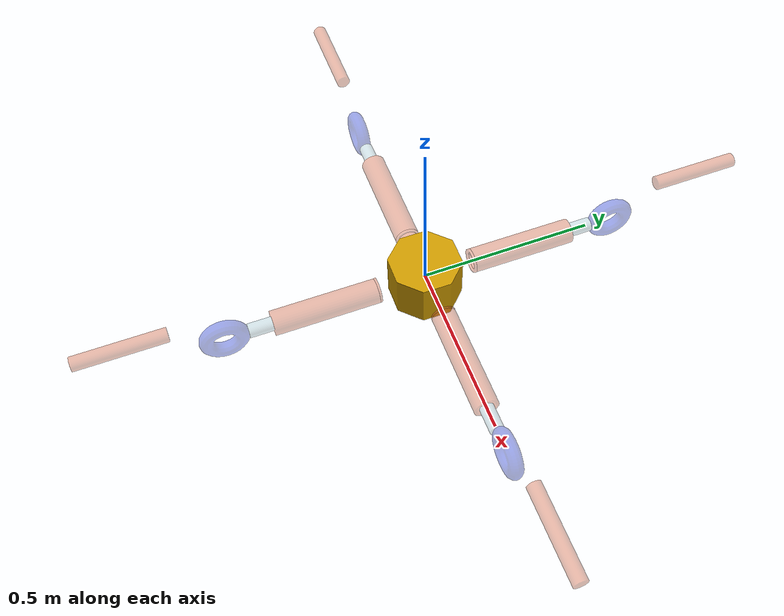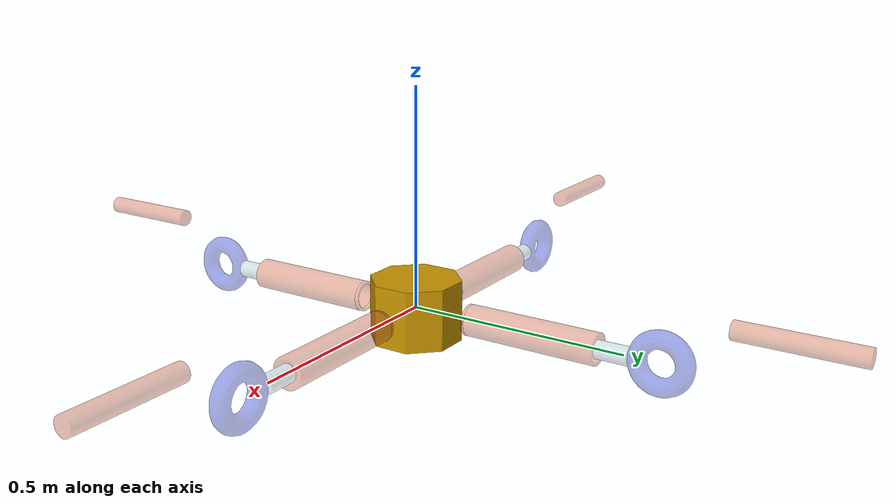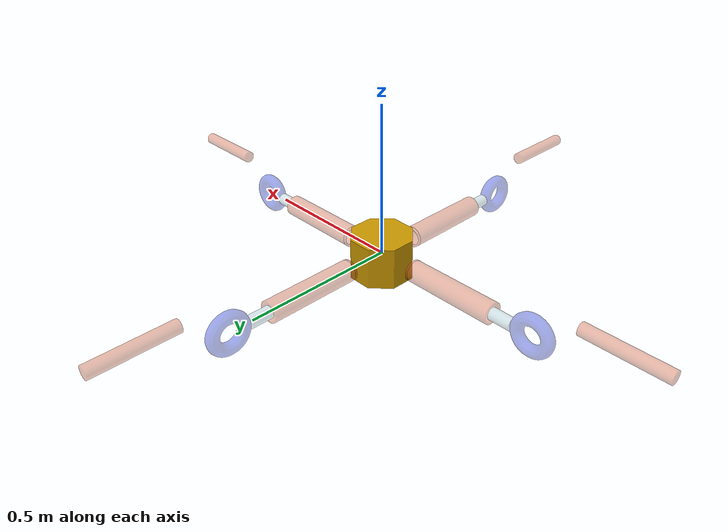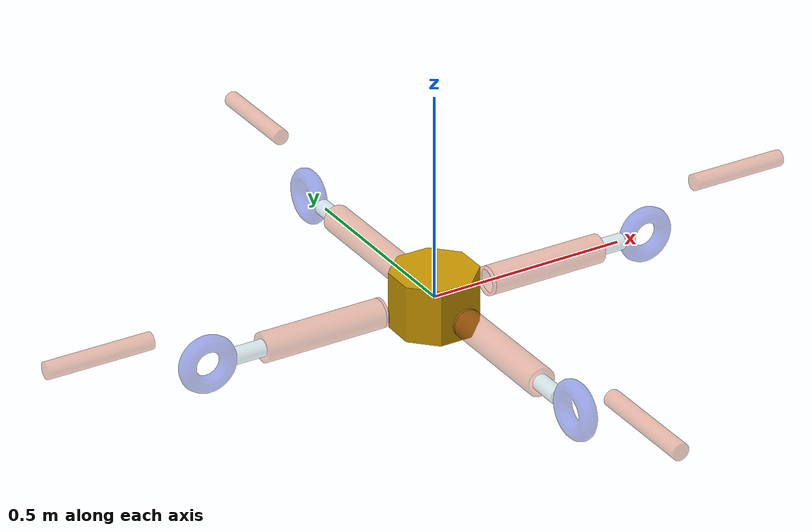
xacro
<?xml version="1.0" ?>
<robot name="starbot" xmlns:xacro="http://ros.org/wiki/xacro">

    <!--- new_gazebo_version should be false by default because pinocchio needs it!-->
    <xacro:arg name="robot_name" default="starbot"/>

    <xacro:include filename="$(find starbot_description)/gazebo/gazebo.urdf.xacro">
        <xacro:arg name="task_period" value="$(arg task_period)"/>
	<xacro:arg name="robot_name" value="$(arg robot_name)"/>
    </xacro:include>

    <xacro:include filename="$(find starbot_description)/urdfs/leg.xacro"/>

    <link name="base_link" />
    <joint name="floating_base" type="fixed">
        <origin rpy="0 0 0" xyz="0 0 0"/>
        <parent link="base_link"/>
        <child link="trunk"/>
    </joint>

    <link name="trunk">
        <inertial>
        <origin xyz="0 0 0" rpy="0 0 0"/>
        <mass value="10.0"/>
        <inertia ixx="0.1956" ixy="0" ixz="0" iyy="0.1956" iyz="0" izz="0.2579"/>
      </inertial>
      <visual>
        <origin xyz="0 0 0" rpy="0 0 0"/>
        <geometry>
           <mesh filename="package://starbot_description/meshes/stl/octagon.stl" scale = "0.7 0.7 0.7"/>
        </geometry>
        <material name="yellow">
        	<color rgba="0.8 0.6 0.0 1.0"/>
        </material>
      </visual>
      <collision>
            <origin xyz="0 0 0" rpy="0 0 0" />
            <geometry>
                <mesh filename="package://starbot_description/meshes/stl/octagon.stl" scale = "0.7 0.7 0.7" />
            </geometry>
        </collision>

    </link>

    <!-- if we imagine to place a line between the two positive direction of axis x and y -->

    <!-- LEFT FRONT LEG = leg align with axis y -->
     <xacro:leg
    	name="lf"
    	parent="trunk"
    	is_front="true"
    	is_right="false"
    	robot_name="$(arg robot_name)">
    </xacro:leg>

    <!-- RIGHT FRONT LEG = leg align with axis x -->
    <xacro:leg
    	name="rf"
    	parent="trunk"
    	is_front="true"
    	is_right="true"
    	robot_name="$(arg robot_name)">
    </xacro:leg>

    <!-- LEFT HIND LEG = leg align with axis neg x -->
     <xacro:leg
    	name="lh"
    	parent="trunk"
    	is_front="false"
    	is_right="false"
    	robot_name="$(arg robot_name)">
    </xacro:leg>

    <!-- RIGHT HIND LEG = leg align with axis neg y -->
    <xacro:leg
    	name="rh"
    	parent="trunk"
    	is_front="false"
    	is_right="true"
    	robot_name="$(arg robot_name)">
    </xacro:leg>

</robot>

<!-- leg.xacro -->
<robot xmlns:xacro="http://ros.org/wiki/xacro" name="solo">

    <!-- Things that are needed only for Gazebo (not the physical robot). These include sensor and controller plugin specifications -->
    <xacro:include filename="$(find starbot_description)/urdfs/leg.transmission.xacro"/>
    <xacro:include filename="$(find starbot_description)/urdfs/leg.gazebo.xacro"/>
    <xacro:include filename="$(find starbot_description)/urdfs/common.xacro"/>

    <!-- This macro has for purpose to define a leg -->
    <xacro:macro name="leg" params="name parent is_front is_right robot_name">

        <!-- Starbot 1.0 -->

        <!--BS_JOINT: Joint between the body and the shoulder -->
        <joint name="${name}_bs_joint" type="revolute">
            <parent link="${parent}"/>
            <child link="${name}_shoulder"/>

            <!-- limit and placement of the joint -->
            <xacro:if value="${is_front}">
                <xacro:unless value="${is_right}">
                    <!-- LF_SHOULDER_JOINT -->
                    <axis xyz="1 0 0"/>
                    <limit effort="${MAX_TORQUE}" lower="-${REV_LIMIT}" upper="${REV_LIMIT}" velocity="${VELOCITY}"/>
                    <origin xyz="0 ${SHOULDER_pos}  0" rpy="0 0 0" />
                </xacro:unless>
                <xacro:if value="${is_right}">
                    <!-- RF_SHOULDER_JOINT -->
                    <axis xyz="0 1 0"/>
                    <limit effort="${MAX_TORQUE}" lower="-${REV_LIMIT}" upper="${REV_LIMIT}" velocity="${VELOCITY}"/>
                    <origin xyz="${SHOULDER_pos} 0 0" rpy="0 0 0" />
                </xacro:if>
            </xacro:if>
            <xacro:unless value="${is_front}">
                <xacro:unless value="${is_right}">
                    <!-- LH_SHOULDER_JOINT -->
                    <axis xyz="0 -1 0"/>
                    <limit effort="${MAX_TORQUE}" lower="-${REV_LIMIT}" upper="${REV_LIMIT}" velocity="${VELOCITY}"/>
                    <origin xyz="-${SHOULDER_pos} 0 0" rpy="0 0 0" />
                </xacro:unless>
                <xacro:if value="${is_right}">
                    <!-- RH_UPPER_LEG_JOINT -->
                    <axis xyz="-1 0 0"/>
                    <limit effort="${MAX_TORQUE}" lower="-${REV_LIMIT}" upper="${REV_LIMIT}" velocity="${VELOCITY}"/>
                    <origin xyz="0 -${SHOULDER_pos} 0" rpy="0 0 0" />
                </xacro:if>
            </xacro:unless>

            <!-- pybullet simulation parameters -->
            <dynamics damping="0.0" friction="0.0"/>
        </joint>

        <!-- SHOULDER ASSEMBLY -->
        <link name="${name}_shoulder">
            <!-- create a dummy shoulder_assembly link to join the two joints -->
            <!--VISUAL-->
            <visual>
            <origin xyz="0 0 0" rpy="0 0 0" />
                <xacro:if value="${is_front}">
                    <xacro:unless value="${is_right}">
                        <!-- LF SHOULDER -->
                        <geometry>
                            <mesh filename="package://starbot_description/meshes/stl/shoulder_y.stl"/>
                        </geometry>
                    </xacro:unless>
                <xacro:if value="${is_right}">
                    <!-- RF SHOULDER-->
                    <geometry>
                        <mesh filename="package://starbot_description/meshes/stl/shoulder_x.stl"/>
                    </geometry>
                    </xacro:if>
                </xacro:if>
                <xacro:unless value="${is_front}">
                    <xacro:unless value="${is_right}">
                        <!-- LH SHOULDER -->
                        <geometry>
                            <mesh filename="package://starbot_description/meshes/stl/shoulder_nx.stl"/>
                        </geometry>
                    </xacro:unless>
                    <xacro:if value="${is_right}">
                        <!-- RH SHOULDER -->
                        <geometry>
                            <mesh filename="package://starbot_description/meshes/stl/shoulder_ny.stl"/>
                        </geometry>
                    </xacro:if>
                </xacro:unless>
                <material name="orange"/>
            </visual>

            <!--INERTIAL -->
            <inertial>
                <origin xyz="0 0 0" rpy="0 0 0" />
                <mass value="0.0001"/>
                <inertia ixx="0" ixy="0" ixz="0" iyy="0" iyz="0" izz="0"/>
            </inertial>
        </link>

        <!--UPPER LEG JOINT-->

        <joint name="${name}_upper_leg_joint" type="revolute">
            <parent link="${name}_shoulder"/>
            <child link="${name}_upperleg"/>

            <!-- joints rotates around the y-axis -->

            <!-- limit and placement of the joint -->
            <xacro:if value="${is_front}">
                <xacro:unless value="${is_right}">
                    <!-- LF_UPPER_LEG_JOINT -->
                    <axis xyz="0 0 1"/>
                    <limit effort="${MAX_TORQUE}" lower="-${REV_LIMIT}" upper="${REV_LIMIT}" velocity="${VELOCITY}"/>
                    <origin xyz="0 0 0" rpy="0 0 0" />
                </xacro:unless>
                <xacro:if value="${is_right}">
                    <!-- RF_UPPER_LEG_JOINT -->
                    <axis xyz="0 0 1"/>
                    <limit effort="${MAX_TORQUE}" lower="-${REV_LIMIT}" upper="${REV_LIMIT}" velocity="${VELOCITY}"/>
                    <origin xyz="0 0 0" rpy="0 0 0" />
                </xacro:if>
            </xacro:if>
            <xacro:unless value="${is_front}">
                <xacro:unless value="${is_right}">
                    <!-- LH_UPPER_LEG_JOINT -->
                    <axis xyz="0 0 1"/>
                    <limit effort="${MAX_TORQUE}" lower="-${REV_LIMIT}" upper="${REV_LIMIT}" velocity="${VELOCITY}"/>
                    <origin xyz="0 0 0" rpy="0 0 0" />
                </xacro:unless>
                <xacro:if value="${is_right}">
                    <!-- RH_UPPER_LEG_JOINT -->
                    <axis xyz="0 0 1"/>
                    <limit effort="${MAX_TORQUE}" lower="-${REV_LIMIT}" upper="${REV_LIMIT}" velocity="${VELOCITY}"/>
                    <origin xyz="0 0 0" rpy="0 0 0" />
                </xacro:if>
            </xacro:unless>

            <!-- pybullet simulation parameters -->
            <dynamics damping="0.0" friction="0.0"/>
        </joint>

        <!-- UPPER LEG ASSEMBLY -->
        <link name="${name}_upperleg">
            <!--VISUAL-->
            <visual>

                <xacro:if value="${is_front}">
                    <xacro:unless value="${is_right}">
			<!-- LF UPPER_LEG -->
			<origin xyz="0 ${UPPER_LEG_pos} 0" rpy="0 0 0" />
                        <geometry>
                            <mesh filename="package://starbot_description/meshes/stl/upper_leg_y.stl"/>
                        </geometry>
                    </xacro:unless>
                    <xacro:if value="${is_right}">
			<!-- RF UPPER_LEG-->
			<origin xyz="${UPPER_LEG_pos} 0 0" rpy="0 0 0" />
                        <geometry>
                            <mesh filename="package://starbot_description/meshes/stl/upper_leg_x.stl"/>
                        </geometry>
                        </xacro:if>
                </xacro:if>
                <xacro:unless value="${is_front}">
                    <xacro:unless value="${is_right}">
			<!-- LH UPPER_LEG -->
			<origin xyz="-${UPPER_LEG_pos} 0 0" rpy="0 0 0" />
                        <geometry>
                            <mesh filename="package://starbot_description/meshes/stl/upper_leg_nx.stl"/>
                        </geometry>
                    </xacro:unless>
                    <xacro:if value="${is_right}">
		        <!-- RH UPPER_LEG -->
		        <origin xyz="0 -${UPPER_LEG_pos} 0" rpy="0 0 0" />
                        <geometry>
                            <mesh filename="package://starbot_description/meshes/stl/upper_leg_ny.stl"/>
                        </geometry>
                    </xacro:if>
                </xacro:unless>
                <material name="orange"/>
            </visual>

            <!--COLLISION-->

            <!-- UPPER LEG LINK INERTIAL -->
            <xacro:if value="${is_front}">
                    <xacro:unless value="${is_right}">
                        <!-- LF UPPER_LEG -->
                        <inertial>
                    		<origin xyz="0 ${CM_XY_UPPER} ${CM_Z_UPPER}" rpy="0 0 1.57"/>
                    		<mass value="2.3"/>
                    		<inertia ixx="0.001878" ixy="0" ixz="0" iyy="0.0182" iyz="0" izz="0.0182"/>
                	</inertial>
                    </xacro:unless>
                    <xacro:if value="${is_right}">
                        <!-- RF UPPER_LEG -->
                        <inertial>
                    		<origin xyz="${CM_XY_UPPER} 0 ${CM_Z_UPPER}" rpy="0 0 0"/>
                    		<mass value="2.3"/>
                    		<inertia ixx="0.001878" ixy="0" ixz="0" iyy="0.0182" iyz="0" izz="0.0182"/>
                	</inertial>
                    </xacro:if>
                </xacro:if>
                <xacro:unless value="${is_front}">
                    <xacro:unless value="${is_right}">
                        <!-- LH UPPER_LEG -->
                        <inertial>
                    		<origin xyz="-${CM_XY_UPPER} 0 ${CM_Z_UPPER}" rpy="0 0 0"/>
                    		<mass value="2.3"/>
                    		<inertia ixx="0.001878" ixy="0" ixz="0" iyy="0.0182" iyz="0" izz="0.0182"/>
                	</inertial>
                    </xacro:unless>
                    <xacro:if value="${is_right}">
                        <!-- RH UPPER_LEG-->
                        <inertial>
                    		<origin xyz="0 -${CM_XY_UPPER} ${CM_Z_UPPER}" rpy="0 0 1.57"/>
                    		<mass value="2.3"/>
                    		<inertia ixx="0.001878" ixy="0" ixz="0" iyy="0.0182" iyz="0" izz="0.0182"/>
                	</inertial>
                    </xacro:if>
                </xacro:unless>

        </link>

        <!--LOWER LEG JOINT-->

        <joint name="${name}_lower_leg_joint" type="prismatic">
            <parent link="${name}_upperleg"/>
            <child link="${name}_lowerleg"/>

            <!-- limit and placement of the joint -->
            <xacro:if value="${is_front}">
                <xacro:unless value="${is_right}">
                    <!-- LF_LOWER_LEG_JOINT -->
                    <axis xyz="0 1 0"/>
                    <limit effort="${MAX_FORCE_LOWERLEG}" lower="${LOWER_LIMIT_PRI}" upper="${UPPER_LIMIT_PRI}" velocity="${VELOCITY}"/>
                    <origin xyz="0 ${LOWER_LEG_joint_pos} 0" rpy="0 0 0" />
                </xacro:unless>
                <xacro:if value="${is_right}">
                    <axis xyz="1 0 0"/>
                    <!-- RF_LOWER_LEG_JOINT -->
                    <limit effort="${MAX_FORCE_LOWERLEG}" lower="${LOWER_LIMIT_PRI}" upper="${UPPER_LIMIT_PRI}" velocity="${VELOCITY}"/>
                    <origin xyz="${LOWER_LEG_joint_pos} 0 0" rpy="0 0 0" />
                </xacro:if>
            </xacro:if>
            <xacro:unless value="${is_front}">
                <xacro:unless value="${is_right}">
                    <axis xyz="-1 0 0"/>
                    <!-- LH_LOWER_LEG_JOINT -->
                    <limit effort="${MAX_FORCE_LOWERLEG}" lower="${LOWER_LIMIT_PRI}" upper="${UPPER_LIMIT_PRI}" velocity="${VELOCITY}"/>
                    <origin xyz="-${LOWER_LEG_joint_pos} 0 0" rpy="0 0 0" />
                </xacro:unless>
                <xacro:if value="${is_right}">
                    <!-- RF_LOWER_LEG_JOINT -->
                    <axis xyz="0 -1 0"/>
                    <limit effort="${MAX_FORCE_LOWERLEG}" lower="${LOWER_LIMIT_PRI}" upper="${UPPER_LIMIT_PRI}" velocity="${VELOCITY}"/>
                    <origin xyz="0 -${LOWER_LEG_joint_pos} 0" rpy="0 0 0" />
                </xacro:if>
            </xacro:unless>

            <!-- pybullet simulation parameters -->
            <dynamics damping="0.0" friction="0.0"/>
        </joint>

        <!-- LOWER LEG ASSEMBLY -->
        <link name="${name}_lowerleg">
            <!--VISUAL-->
            <visual>

                <xacro:if value="${is_front}">
                    <xacro:unless value="${is_right}">
                        <!-- LF LOWER_LEG -->
                        <origin xyz="0 ${LOWER_LEG_pos} 0" rpy="0 0 0" />
                        <geometry>
                            <mesh filename="package://starbot_description/meshes/stl/lower_leg_y.stl"/>
                        </geometry>
                    </xacro:unless>
                    <xacro:if value="${is_right}">
                        <!-- RF LOWER_LEG-->
                        <origin xyz="${LOWER_LEG_pos} 0 0" rpy="0 0 0" />
                        <geometry>
                            <mesh filename="package://starbot_description/meshes/stl/lower_leg_x.stl"/>
                        </geometry>
                    </xacro:if>
                </xacro:if>
                <xacro:unless value="${is_front}">
                    <xacro:unless value="${is_right}">
                        <!-- LH LOWER_LEG -->
                        <origin xyz="-${LOWER_LEG_pos} 0 0" rpy="0 0 0" />
                        <geometry>
                            <mesh filename="package://starbot_description/meshes/stl/lower_leg_nx.stl"/>
                        </geometry>
                    </xacro:unless>
                    <xacro:if value="${is_right}">
                        <!-- RH LOWER_LEG -->
                        <origin xyz="0 -${LOWER_LEG_pos} 0" rpy="0 0 0" />
                        <geometry>
                            <mesh filename="package://starbot_description/meshes/stl/lower_leg_ny.stl"/>
                        </geometry>
                    </xacro:if>
                </xacro:unless>
                <material name="orange"/>
            </visual>

            <!--COLLISION-->
            <collision>

                <xacro:if value="${is_front}">
                    <xacro:unless value="${is_right}">
                        <!-- LF LOWER_LEG -->
                         <origin xyz="0 ${LOWER_LEG_pos} 0" rpy="0 0 0" />
                        <geometry>
                            <mesh filename="package://starbot_description/meshes/stl/lower_leg_y.stl" />
                        </geometry>
                    </xacro:unless>
                    <xacro:if value="${is_right}">
                        <!-- RF LOWER_LEG -->
                        <origin xyz="${LOWER_LEG_pos} 0 0" rpy="0 0 0" />
                        <geometry>
                            <mesh filename="package://starbot_description/meshes/stl/lower_leg_x.stl"/>
                        </geometry>
                    </xacro:if>
                </xacro:if>
                <xacro:unless value="${is_front}">
                    <xacro:unless value="${is_right}">
                        <!-- LH LOWER_LEG -->
                        <origin xyz="-${LOWER_LEG_pos} 0 0" rpy="0 0 0" />
                        <geometry>
                            <mesh filename="package://starbot_description/meshes/stl/lower_leg_nx.stl" />
                        </geometry>
                    </xacro:unless>
                    <xacro:if value="${is_right}">
                        <!-- RH LOWER_LEG-->
                         <origin xyz="0 -${LOWER_LEG_pos} 0" rpy="0 0 0" />
                        <geometry>
                            <mesh filename="package://starbot_description/meshes/stl/lower_leg_ny.stl"/>
                        </geometry>
                    </xacro:if>
                </xacro:unless>
            </collision>

            <!-- LOWER LEG LINK INERTIAL -->
            <xacro:if value="${is_front}">
                    <xacro:unless value="${is_right}">
                        <!-- LF LOWER_LEG -->
                        <inertial>
                    		<origin xyz="0 ${CM_XY_LOWER} ${CM_Z_LOWER}" rpy="0 0 1.57"/>
                    		<mass value="2.36"/>
                    		<inertia ixx="0.000639" ixy="0" ixz="0" iyy="0.0126" iyz="0" izz="0.0126"/>
                	</inertial>
                    </xacro:unless>
                    <xacro:if value="${is_right}">
                        <!-- RF LOWER_LEG -->
                        <inertial>
                    		<origin xyz="${CM_XY_LOWER} 0 ${CM_Z_LOWER}" rpy="0 0 0"/>
                    		<mass value="2.36"/>
                    		<inertia ixx="0.000639" ixy="0" ixz="0" iyy="0.0126" iyz="0" izz="0.0126"/>
                	</inertial>
                    </xacro:if>
                </xacro:if>
                <xacro:unless value="${is_front}">
                    <xacro:unless value="${is_right}">
                        <!-- LH LOWER_LEG -->
                        <inertial>
                    		<origin xyz="-${CM_XY_LOWER} 0 ${CM_Z_LOWER}" rpy="0 0 0"/>
                    		<mass value="2.36"/>
                    		<inertia ixx="0.000639" ixy="0" ixz="0" iyy="0.0126" iyz="0" izz="0.0126"/>
                	</inertial>
                    </xacro:unless>
                    <xacro:if value="${is_right}">
                        <!-- RH LOWER_LEG-->
                        <inertial>
                    		<origin xyz="0 -${CM_XY_LOWER} ${CM_Z_LOWER}" rpy="0 0 1.57"/>
                    		<mass value="2.36"/>
                    		<inertia ixx="0.000639" ixy="0" ixz="0" iyy="0.0126" iyz="0" izz="0.0126"/>
                	</inertial>
                    </xacro:if>
                </xacro:unless>

        </link>

        <!--PRE WHEEL JOINT-->

        <joint name="${name}_pre_wheel_joint" type="revolute">
            <parent link="${name}_lowerleg"/>
            <child link="${name}_pre_wheel"/>

            <!-- joints rotates around the x-axis (refer to the x-axis align leg) -->

            <!-- limit and placement of the joint -->
            <xacro:if value="${is_front}">
                <xacro:unless value="${is_right}">
                    <!-- LF_PRE_WHEEL_JOINT -->
                    <axis xyz="0 1 0"/>
                    <limit effort="${MAX_TORQUE}" lower="-${REV_LIMIT_PRE_WHEEL}" upper="${REV_LIMIT_PRE_WHEEL}" velocity="${VELOCITY}"/>
                    <origin xyz="0 ${PRE_WHEEL_pos} 0" rpy="0 0 0" />
                </xacro:unless>
                <xacro:if value="${is_right}">
                    <axis xyz="1 0 0"/>
                    <!-- RF_PRE_WHEEL_JOINT -->
                    <limit effort="${MAX_TORQUE}" lower="-${REV_LIMIT_PRE_WHEEL}" upper="${REV_LIMIT_PRE_WHEEL}" velocity="${VELOCITY}"/>
                    <origin xyz="${PRE_WHEEL_pos} 0 0" rpy="0 0 0" />
                </xacro:if>
            </xacro:if>
            <xacro:unless value="${is_front}">
                <xacro:unless value="${is_right}">
                    <axis xyz="-1 0  0"/>
                    <!-- LH_PRE_WHEEL_JOINT -->
                    <limit effort="${MAX_TORQUE}" lower="-${REV_LIMIT_PRE_WHEEL}" upper="${REV_LIMIT_PRE_WHEEL}" velocity="${VELOCITY}"/>
                    <origin xyz="-${PRE_WHEEL_pos} 0 0" rpy="0 0 0" />
                </xacro:unless>
                <xacro:if value="${is_right}">
                    <!-- RF_PRE_WHEEL_JOINT -->
                    <axis xyz="0  -1 0"/>
                    <limit effort="${MAX_TORQUE}" lower="-${REV_LIMIT_PRE_WHEEL}" upper="${REV_LIMIT_PRE_WHEEL}" velocity="${VELOCITY}"/>
                    <origin xyz="0 -${PRE_WHEEL_pos} 0" rpy="0 0 0" />
                </xacro:if>
            </xacro:unless>

            <!-- pybullet simulation parameters -->
            <dynamics damping="0.0" friction="0.0"/>
        </joint>

        <!-- PRE WHEEL ASSEMBLY -->
        <link name="${name}_pre_wheel">
            <!--VISUAL-->
            <visual>
                <origin xyz="0 0 0" rpy="0 0 0" />
                <xacro:if value="${is_front}">
                    <xacro:unless value="${is_right}">
                        <!-- LF PRE_WHEEL -->
                        <!--we need mesh geometry otherwise strange behaviour happens-->
                        <geometry>
                            <mesh filename="package://starbot_description/meshes/stl/joint_wheel_y.stl"/>
                        </geometry>
                    </xacro:unless>
                    <xacro:if value="${is_right}">
                        <!-- RF PRE_WHEEL-->
                        <geometry>
                            <mesh filename="package://starbot_description/meshes/stl/joint_wheel_x.stl"/>
                        </geometry>
                    </xacro:if>
                </xacro:if>
                <xacro:unless value="${is_front}">
                    <xacro:unless value="${is_right}">
                        <!-- LH PRE_WHEEL -->
                        <geometry>
                            <mesh filename="package://starbot_description/meshes/stl/joint_wheel_nx.stl"/>
                        </geometry>
                    </xacro:unless>
                    <xacro:if value="${is_right}">
                        <!-- RH PRE_WHEEL -->
                        <geometry>
                            <mesh filename="package://starbot_description/meshes/stl/joint_wheel_ny.stl"/>
                        </geometry>
                    </xacro:if>
                </xacro:unless>
                <material name="gray"/>
            </visual>

            <!--COLLISION-->
            <collision>
                <origin xyz="0 0 0" rpy="0 0 0" />
                <xacro:if value="${is_front}">
                    <xacro:unless value="${is_right}">
                        <!-- LF PRE_WHEEL -->
                        <geometry>
                            <mesh filename="package://starbot_description/meshes/stl/joint_wheel_y.stl"/>
                        </geometry>
                    </xacro:unless>
                    <xacro:if value="${is_right}">
                        <!-- RF PRE_WHEEL -->
                        <geometry>
                            <mesh filename="package://starbot_description/meshes/stl/joint_wheel_x.stl"/>
                        </geometry>
                    </xacro:if>
                </xacro:if>
                <xacro:unless value="${is_front}">
                    <xacro:unless value="${is_right}">
                        <!-- LH PRE_WHEEL -->
                        <geometry>
                            <mesh filename="package://starbot_description/meshes/stl/joint_wheel_nx.stl" />
                        </geometry>
                    </xacro:unless>
                    <xacro:if value="${is_right}">
                        <!-- RH PRE_WHEEL-->
                        <geometry>
                            <mesh filename="package://starbot_description/meshes/stl/joint_wheel_ny.stl"/>
                        </geometry>
                    </xacro:if>
                </xacro:unless>
            </collision>

            <!-- PRE WHEEL LINK INERTIAL -->
            <xacro:if value="${is_front}">
                    <xacro:unless value="${is_right}">
                        <!-- LF PRE_WHEEL_LEG -->
                        <inertial>
                    		<origin xyz="0 ${CM_XY_PRE_WHEEL} ${CM_Z_PRE_WHEEL}" rpy="0 0 1.57"/>
                    		<mass value="0.66"/>
                    		<inertia ixx="0.00017674" ixy="0" ixz="0" iyy="0.000358" iyz="0" izz="0.000358"/>
                	</inertial>
                    </xacro:unless>
                    <xacro:if value="${is_right}">
                        <!-- RF PRE_WHEEL_LEG -->
                        <inertial>
                    		<origin xyz="${CM_XY_PRE_WHEEL} 0 ${CM_Z_PRE_WHEEL}" rpy="0 0 0"/>
                    		<mass value="0.66"/>
                    		<inertia ixx="0.00017674" ixy="0" ixz="0" iyy="0.000358" iyz="0" izz="0.000358"/>
                	</inertial>
                    </xacro:if>
                </xacro:if>
                <xacro:unless value="${is_front}">
                    <xacro:unless value="${is_right}">
                        <!-- LH PRE_WHEEL_LEG -->
                        <inertial>
                    		<origin xyz="-${CM_XY_PRE_WHEEL} 0 ${CM_Z_PRE_WHEEL}" rpy="0 0 0"/>
                    		<mass value="0.66"/>
                    		<inertia ixx="0.00017674" ixy="0" ixz="0" iyy="0.000358" iyz="0" izz="0.000358"/>
                	</inertial>
                    </xacro:unless>
                    <xacro:if value="${is_right}">
                        <!-- RH PRE_WHEEL_LEG-->
                        <inertial>
                    		<origin xyz="0 -${CM_XY_PRE_WHEEL} ${CM_Z_PRE_WHEEL}" rpy="0 0 1.57"/>
                    		<mass value="0.66"/>
                    		<inertia ixx="0.00017674" ixy="0" ixz="0" iyy="0.000358" iyz="0" izz="0.000358"/>
                	</inertial>
                    </xacro:if>
                </xacro:unless>

        </link>

        <!--WHEEL JOINT-->

        <joint name="${name}_wheel_joint" type="revolute">
            <parent link="${name}_pre_wheel"/>
            <child link="${name}_wheel"/>

            <!-- joints rotates around the x-axis (refer to the x-axis align leg) -->

            <!-- limit and placement of the joint -->
            <xacro:if value="${is_front}">
                <xacro:unless value="${is_right}">
                    <!-- LF_WHEEL_JOINT -->
                    <axis xyz="1 0 0"/>
                    <origin xyz="0 ${WHEEL_pos} 0" rpy="0 0 0" />
                </xacro:unless>
                <xacro:if value="${is_right}">
                    <axis xyz="0 1 0"/>
                    <!-- RF_WHEEL_JOINT -->
                    <origin xyz="${WHEEL_pos} 0 0" rpy="0 0 0" />
                </xacro:if>
            </xacro:if>
            <xacro:unless value="${is_front}">
                <xacro:unless value="${is_right}">
                    <axis xyz="0 -1 0"/>
                    <!-- LH_WHEEL_JOINT -->
                    <origin xyz="-${WHEEL_pos} 0 0" rpy="0 0 0" />
                </xacro:unless>
                <xacro:if value="${is_right}">
                    <!-- RH_WHEEL_JOINT -->
                    <axis xyz="-1 0 0"/>
                    <origin xyz="0 -${WHEEL_pos} 0" rpy="0 0 0" />
                </xacro:if>
            </xacro:unless>

            <limit effort="100" lower="-1e10" upper="1e10" velocity="100"/>
            <!-- pybullet simulation parameters -->
            <dynamics damping="0.0" friction="0.0"/>
        </joint>

        <!-- WHEEL ASSEMBLY -->
        <link name="${name}_wheel">
            <!--VISUAL-->
            <visual>
                <origin xyz="0 0 0" rpy="0 0 0" />
                <xacro:if value="${is_front}">
                    <xacro:unless value="${is_right}">
                        <!-- LF WHEEL -->
                        <!--we need mesh geometry otherwise strange behaviour happens-->
                        <geometry>
                            <mesh filename="package://starbot_description/meshes/stl/wheel_y.stl"/>
                        </geometry>
                    </xacro:unless>
                    <xacro:if value="${is_right}">
                        <!-- RF WHEEL-->
                        <geometry>
                            <mesh filename="package://starbot_description/meshes/stl/wheel_x.stl"/>
                        </geometry>
                    </xacro:if>
                </xacro:if>
                <xacro:unless value="${is_front}">
                    <xacro:unless value="${is_right}">
                        <!-- LH WHEEL -->
                        <geometry>
                            <mesh filename="package://starbot_description/meshes/stl/wheel_nx.stl"/>
                        </geometry>
                    </xacro:unless>
                    <xacro:if value="${is_right}">
                        <!-- RH WHEEL -->
                        <geometry>
                            <mesh filename="package://starbot_description/meshes/stl/wheel_ny.stl"/>
                        </geometry>
                    </xacro:if>
                </xacro:unless>
                <material name="blue"/>
            </visual>

            <!--COLLISION-->
            <collision>
                <origin xyz="0 0 0" rpy="0 0 0" />
                <xacro:if value="${is_front}">
                    <xacro:unless value="${is_right}">
                        <!-- LF WHEEL -->
                        <geometry>
                            <mesh filename="package://starbot_description/meshes/stl/wheel_y.stl"/>
                        </geometry>
                    </xacro:unless>
                    <xacro:if value="${is_right}">
                        <!-- RF WHEEL -->
                        <geometry>
                            <mesh filename="package://starbot_description/meshes/stl/wheel_x.stl"/>
                        </geometry>
                    </xacro:if>
                </xacro:if>
                <xacro:unless value="${is_front}">
                    <xacro:unless value="${is_right}">
                        <!-- LH WHEEL -->
                        <geometry>
                            <mesh filename="package://starbot_description/meshes/stl/wheel_nx.stl"/>
                        </geometry>
                    </xacro:unless>
                    <xacro:if value="${is_right}">
                        <!-- RH WHEEL-->
                        <geometry>
                            <mesh filename="package://starbot_description/meshes/stl/wheel_ny.stl"/>
                        </geometry>
                    </xacro:if>
                </xacro:unless>
            </collision>

            <!-- WHEEL LINK INERTIAL -->
            <xacro:if value="${is_front}">
                    <xacro:unless value="${is_right}">
                        <!--LF WHEEL_LEG -->
                        <inertial>
                    		<origin xyz="0 ${CM_XY_WHEEL} ${CM_Z_WHEEL}" rpy="0 0 1.57"/>
                    		<mass value="1.0"/>
                    		<inertia ixx="0.00177" ixy="0" ixz="0" iyy="0.00326" iyz="0" izz="0.00177"/>
                	</inertial>
                    </xacro:unless>
                    <xacro:if value="${is_right}">
                        <!--RF WHEEL_LEG -->
                        <inertial>
                    		<origin xyz="${CM_XY_WHEEL} 0 ${CM_Z_WHEEL}" rpy="0 0 0"/>
                    		<mass value="1.0"/>
                    		<inertia ixx="0.00177" ixy="0" ixz="0" iyy="0.00326" iyz="0" izz="0.00177"/>
                	</inertial>
                    </xacro:if>
                </xacro:if>
                <xacro:unless value="${is_front}">
                    <xacro:unless value="${is_right}">
                        <!--LH WHEEL_LEG -->
                        <inertial>
                    		<origin xyz="-${CM_XY_WHEEL}  0 ${CM_Z_WHEEL}" rpy="0 0 0"/>
                    		<mass value="1.0"/>
                    		<inertia ixx="0.00177" ixy="0" ixz="0" iyy="0.00326" iyz="0" izz="0.00177"/>
                	</inertial>
                    </xacro:unless>
                    <xacro:if value="${is_right}">
                        <!--RH WHEEL_LEG-->
                        <inertial>
                    		<origin xyz="0 -${CM_XY_WHEEL} ${CM_Z_WHEEL}" rpy="0 0 1.57"/>
                    		<mass value="1.0"/>
                    		<inertia ixx="0.00177" ixy="0" ixz="0" iyy="0.00326" iyz="0" izz="0.00177"/>
                	</inertial>
                    </xacro:if>
                </xacro:unless>
        </link>

        <!-- Extensions -->
        <xacro:leg_transmission name="${name}"/>
        <xacro:leg_gazebo name="${name}" robot_name="${robot_name}"/>
    </xacro:macro>
</robot>

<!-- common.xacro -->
<robot xmlns:xacro="http://ros.org/wiki/xacro">

    <!-- revolute prismatic limits -->

    <xacro:property name="REV_LIMIT" value="0.785" />
    <xacro:property name="REV_LIMIT_PRE_WHEEL" value="1.57" />
    <xacro:property name="LOWER_LIMIT_PRI" value="0." />
    <xacro:property name="UPPER_LIMIT_PRI" value="0.2" />

    <!-- center of mass of each part besides shoulder (for inertia) -->

    <xacro:property name="CM_XY_UPPER" value="${UPPER_LEG_pos/2}" />
    <xacro:property name="CM_Z_UPPER" value="0" />

    <xacro:property name="CM_XY_LOWER" value="${LOWER_LEG_pos + LOWER_LEG_joint_pos}" />
    <xacro:property name="CM_Z_LOWER" value="0" />

    <xacro:property name="CM_XY_PRE_WHEEL" value="0" />
    <xacro:property name="CM_Z_PRE_WHEEL" value="0" />

    <xacro:property name="CM_XY_WHEEL" value="0" />
    <xacro:property name="CM_Z_WHEEL" value="0" />

    <!-- These are absolute distance value, the sign are decided in leg.xacro -->

    <xacro:property name="SHOULDER_pos" value="0.14142" />
    <xacro:property name="UPPER_LEG_pos" value="0.15312" />
    <xacro:property name="LOWER_LEG_pos" value="0.12546" />
    <xacro:property name="LOWER_LEG_joint_pos" value="0.05" />
    <xacro:property name="PRE_WHEEL_pos" value="0.285" />
    <xacro:property name="WHEEL_pos" value="0.10183" />

    <xacro:property name="VELOCITY" value="58.17764173" />

    <!-- torque limits -->
    <xacro:property name="MAX_TORQUE" value="300" />
    <xacro:property name="MAX_FORCE_LOWERLEG" value="10000" />

    <!-- material colors -->
     <material name="orange">
     <color rgba="0.800 0.331 0.183 0.4"/>
    </material>

    <material name="blue">
     <color rgba="0.051 0.144 0.800 0.4"/>
    </material>

    <material name="gray">
     <color rgba="0.638 0.779 0.819 0.4"/>
    </material>

</robot>
